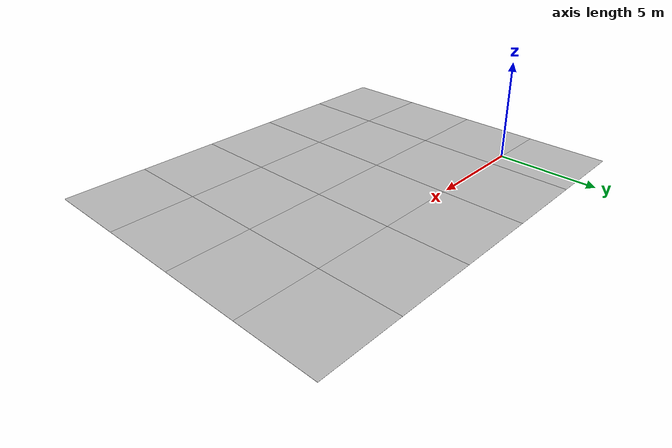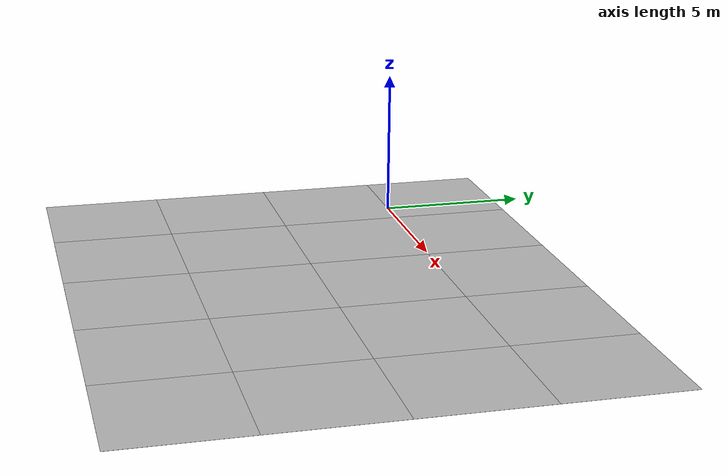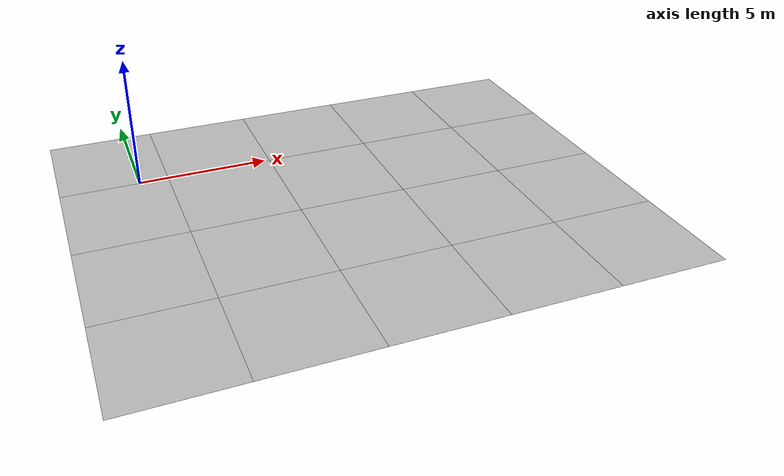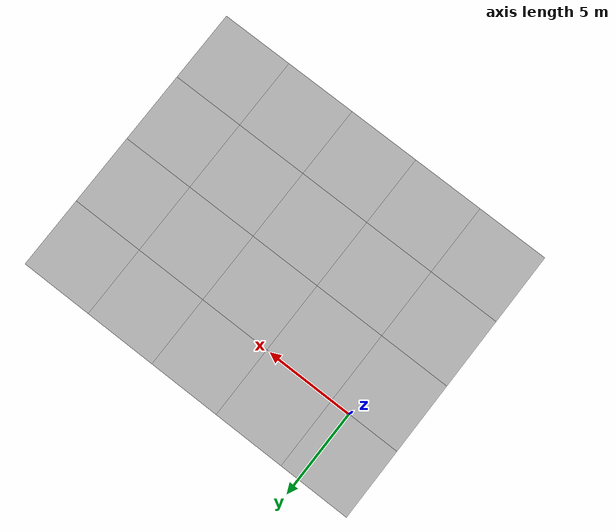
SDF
<sdf version='1.6'><world name='default'>
    <light name='sun_light' type='directional'>
      <pose frame=''>0 0 10 0 -0 0</pose>
      <diffuse>0.5 0.5 0.5 1</diffuse>
      <specular>0.1 0.1 0.1 1</specular>
      <direction>0.1 0.1 -0.9</direction>
      <attenuation>
        <range>20</range>
        <constant>0.5</constant>
        <linear>0.01</linear>
        <quadratic>0.001</quadratic>
      </attenuation>
      <cast_shadows>1</cast_shadows>
    </light>

    <model name='Tile/0-0'>
      <static>1</static>
      <link name='link'>
        <collision name='collision'>
          <geometry>
            <plane>
              <normal>0 0 1</normal>
              <size>4.096 4.096</size>
            </plane>
          </geometry>
          <surface>
            <friction>
              <ode>
                <mu>100</mu>
                <mu2>50</mu2>
              </ode>
              <torsional>
                <ode/>
              </torsional>
            </friction>
            <contact>
              <ode/>
            </contact>
            <bounce/>
          </surface>
          <max_contacts>10</max_contacts>
        </collision>
        <visual name='visual'>
          <cast_shadows>0</cast_shadows>
          <geometry>
            <plane>
              <normal>0 0 1</normal>
              <size>4.096 4.096</size>
            </plane>
          </geometry>
          <material>
            <script>
              <uri>file://materials/scripts</uri>
              <uri>file://materials/textures</uri>
              <name>Tile/5eab350b8220ac9944dbdfa4ac3288c7c17e24c3bf5df0dfcf6173d64dae00a1</name>
            </script>
          </material>
        </visual>
        <self_collide>0</self_collide>
        <enable_wind>0</enable_wind>
        <kinematic>0</kinematic>
      </link>
      <pose frame=''>-0.952 -10.25725088833618 0 0 -0 0</pose>
    </model>

    <model name='Tile/0-1'>
      <static>1</static>
      <link name='link'>
        <collision name='collision'>
          <geometry>
            <plane>
              <normal>0 0 1</normal>
              <size>4.096 4.096</size>
            </plane>
          </geometry>
          <surface>
            <friction>
              <ode>
                <mu>100</mu>
                <mu2>50</mu2>
              </ode>
              <torsional>
                <ode/>
              </torsional>
            </friction>
            <contact>
              <ode/>
            </contact>
            <bounce/>
          </surface>
          <max_contacts>10</max_contacts>
        </collision>
        <visual name='visual'>
          <cast_shadows>0</cast_shadows>
          <geometry>
            <plane>
              <normal>0 0 1</normal>
              <size>4.096 4.096</size>
            </plane>
          </geometry>
          <material>
            <script>
              <uri>file://materials/scripts</uri>
              <uri>file://materials/textures</uri>
              <name>Tile/5eab350b8220ac9944dbdfa4ac3288c7c17e24c3bf5df0dfcf6173d64dae00a1</name>
            </script>
          </material>
        </visual>
        <self_collide>0</self_collide>
        <enable_wind>0</enable_wind>
        <kinematic>0</kinematic>
      </link>
      <pose frame=''>-0.952 -6.1612508883361805 0 0 -0 0</pose>
    </model>

    <model name='Tile/0-2'>
      <static>1</static>
      <link name='link'>
        <collision name='collision'>
          <geometry>
            <plane>
              <normal>0 0 1</normal>
              <size>4.096 4.096</size>
            </plane>
          </geometry>
          <surface>
            <friction>
              <ode>
                <mu>100</mu>
                <mu2>50</mu2>
              </ode>
              <torsional>
                <ode/>
              </torsional>
            </friction>
            <contact>
              <ode/>
            </contact>
            <bounce/>
          </surface>
          <max_contacts>10</max_contacts>
        </collision>
        <visual name='visual'>
          <cast_shadows>0</cast_shadows>
          <geometry>
            <plane>
              <normal>0 0 1</normal>
              <size>4.096 4.096</size>
            </plane>
          </geometry>
          <material>
            <script>
              <uri>file://materials/scripts</uri>
              <uri>file://materials/textures</uri>
              <name>Tile/b21e87aca7347fb7e7ec1d495ac43d496f06ab00fcd06efa14550045c2843718</name>
            </script>
          </material>
        </visual>
        <self_collide>0</self_collide>
        <enable_wind>0</enable_wind>
        <kinematic>0</kinematic>
      </link>
      <pose frame=''>-0.952 -2.0652508883361804 0 0 -0 0</pose>
    </model>

    <model name='Tile/0-3'>
      <static>1</static>
      <link name='link'>
        <collision name='collision'>
          <geometry>
            <plane>
              <normal>0 0 1</normal>
              <size>4.096 4.096</size>
            </plane>
          </geometry>
          <surface>
            <friction>
              <ode>
                <mu>100</mu>
                <mu2>50</mu2>
              </ode>
              <torsional>
                <ode/>
              </torsional>
            </friction>
            <contact>
              <ode/>
            </contact>
            <bounce/>
          </surface>
          <max_contacts>10</max_contacts>
        </collision>
        <visual name='visual'>
          <cast_shadows>0</cast_shadows>
          <geometry>
            <plane>
              <normal>0 0 1</normal>
              <size>4.096 4.096</size>
            </plane>
          </geometry>
          <material>
            <script>
              <uri>file://materials/scripts</uri>
              <uri>file://materials/textures</uri>
              <name>Tile/1c508ab05ef441a0e77cc45752326c17f747d32e5b012471dfd4995f9e37cf38</name>
            </script>
          </material>
        </visual>
        <self_collide>0</self_collide>
        <enable_wind>0</enable_wind>
        <kinematic>0</kinematic>
      </link>
      <pose frame=''>-0.952 2.0307491116638197 0 0 -0 0</pose>
    </model>

    <model name='Tile/1-0'>
      <static>1</static>
      <link name='link'>
        <collision name='collision'>
          <geometry>
            <plane>
              <normal>0 0 1</normal>
              <size>4.096 4.096</size>
            </plane>
          </geometry>
          <surface>
            <friction>
              <ode>
                <mu>100</mu>
                <mu2>50</mu2>
              </ode>
              <torsional>
                <ode/>
              </torsional>
            </friction>
            <contact>
              <ode/>
            </contact>
            <bounce/>
          </surface>
          <max_contacts>10</max_contacts>
        </collision>
        <visual name='visual'>
          <cast_shadows>0</cast_shadows>
          <geometry>
            <plane>
              <normal>0 0 1</normal>
              <size>4.096 4.096</size>
            </plane>
          </geometry>
          <material>
            <script>
              <uri>file://materials/scripts</uri>
              <uri>file://materials/textures</uri>
              <name>Tile/3b41320b0590d78a80528c6be545f1096f0e3b8bda63ea7345900b16f733899f</name>
            </script>
          </material>
        </visual>
        <self_collide>0</self_collide>
        <enable_wind>0</enable_wind>
        <kinematic>0</kinematic>
      </link>
      <pose frame=''>3.144 -10.25725088833618 0 0 -0 0</pose>
    </model>

    <model name='Tile/1-1'>
      <static>1</static>
      <link name='link'>
        <collision name='collision'>
          <geometry>
            <plane>
              <normal>0 0 1</normal>
              <size>4.096 4.096</size>
            </plane>
          </geometry>
          <surface>
            <friction>
              <ode>
                <mu>100</mu>
                <mu2>50</mu2>
              </ode>
              <torsional>
                <ode/>
              </torsional>
            </friction>
            <contact>
              <ode/>
            </contact>
            <bounce/>
          </surface>
          <max_contacts>10</max_contacts>
        </collision>
        <visual name='visual'>
          <cast_shadows>0</cast_shadows>
          <geometry>
            <plane>
              <normal>0 0 1</normal>
              <size>4.096 4.096</size>
            </plane>
          </geometry>
          <material>
            <script>
              <uri>file://materials/scripts</uri>
              <uri>file://materials/textures</uri>
              <name>Tile/84bcf109f8b5498794bfc38aefce2795dda5130f91375f0ac91817d9c6a1268c</name>
            </script>
          </material>
        </visual>
        <self_collide>0</self_collide>
        <enable_wind>0</enable_wind>
        <kinematic>0</kinematic>
      </link>
      <pose frame=''>3.144 -6.1612508883361805 0 0 -0 0</pose>
    </model>

    <model name='Tile/1-2'>
      <static>1</static>
      <link name='link'>
        <collision name='collision'>
          <geometry>
            <plane>
              <normal>0 0 1</normal>
              <size>4.096 4.096</size>
            </plane>
          </geometry>
          <surface>
            <friction>
              <ode>
                <mu>100</mu>
                <mu2>50</mu2>
              </ode>
              <torsional>
                <ode/>
              </torsional>
            </friction>
            <contact>
              <ode/>
            </contact>
            <bounce/>
          </surface>
          <max_contacts>10</max_contacts>
        </collision>
        <visual name='visual'>
          <cast_shadows>0</cast_shadows>
          <geometry>
            <plane>
              <normal>0 0 1</normal>
              <size>4.096 4.096</size>
            </plane>
          </geometry>
          <material>
            <script>
              <uri>file://materials/scripts</uri>
              <uri>file://materials/textures</uri>
              <name>Tile/acab734eb09d6deda5e5dbb0445b09136212e9219d2d42240648765041fc193f</name>
            </script>
          </material>
        </visual>
        <self_collide>0</self_collide>
        <enable_wind>0</enable_wind>
        <kinematic>0</kinematic>
      </link>
      <pose frame=''>3.144 -2.0652508883361804 0 0 -0 0</pose>
    </model>

    <model name='Tile/1-3'>
      <static>1</static>
      <link name='link'>
        <collision name='collision'>
          <geometry>
            <plane>
              <normal>0 0 1</normal>
              <size>4.096 4.096</size>
            </plane>
          </geometry>
          <surface>
            <friction>
              <ode>
                <mu>100</mu>
                <mu2>50</mu2>
              </ode>
              <torsional>
                <ode/>
              </torsional>
            </friction>
            <contact>
              <ode/>
            </contact>
            <bounce/>
          </surface>
          <max_contacts>10</max_contacts>
        </collision>
        <visual name='visual'>
          <cast_shadows>0</cast_shadows>
          <geometry>
            <plane>
              <normal>0 0 1</normal>
              <size>4.096 4.096</size>
            </plane>
          </geometry>
          <material>
            <script>
              <uri>file://materials/scripts</uri>
              <uri>file://materials/textures</uri>
              <name>Tile/f02de3276d20531434c8da178353330a43a1fd8c9aa6b3cefcfa4a7d21da561c</name>
            </script>
          </material>
        </visual>
        <self_collide>0</self_collide>
        <enable_wind>0</enable_wind>
        <kinematic>0</kinematic>
      </link>
      <pose frame=''>3.144 2.0307491116638197 0 0 -0 0</pose>
    </model>

    <model name='Tile/2-0'>
      <static>1</static>
      <link name='link'>
        <collision name='collision'>
          <geometry>
            <plane>
              <normal>0 0 1</normal>
              <size>4.096 4.096</size>
            </plane>
          </geometry>
          <surface>
            <friction>
              <ode>
                <mu>100</mu>
                <mu2>50</mu2>
              </ode>
              <torsional>
                <ode/>
              </torsional>
            </friction>
            <contact>
              <ode/>
            </contact>
            <bounce/>
          </surface>
          <max_contacts>10</max_contacts>
        </collision>
        <visual name='visual'>
          <cast_shadows>0</cast_shadows>
          <geometry>
            <plane>
              <normal>0 0 1</normal>
              <size>4.096 4.096</size>
            </plane>
          </geometry>
          <material>
            <script>
              <uri>file://materials/scripts</uri>
              <uri>file://materials/textures</uri>
              <name>Tile/1f62d89e518a986ef662b867c514cb45311857e26fbfa6544dbdc6545461b409</name>
            </script>
          </material>
        </visual>
        <self_collide>0</self_collide>
        <enable_wind>0</enable_wind>
        <kinematic>0</kinematic>
      </link>
      <pose frame=''>7.24 -10.25725088833618 0 0 -0 0</pose>
    </model>

    <model name='Tile/2-1'>
      <static>1</static>
      <link name='link'>
        <collision name='collision'>
          <geometry>
            <plane>
              <normal>0 0 1</normal>
              <size>4.096 4.096</size>
            </plane>
          </geometry>
          <surface>
            <friction>
              <ode>
                <mu>100</mu>
                <mu2>50</mu2>
              </ode>
              <torsional>
                <ode/>
              </torsional>
            </friction>
            <contact>
              <ode/>
            </contact>
            <bounce/>
          </surface>
          <max_contacts>10</max_contacts>
        </collision>
        <visual name='visual'>
          <cast_shadows>0</cast_shadows>
          <geometry>
            <plane>
              <normal>0 0 1</normal>
              <size>4.096 4.096</size>
            </plane>
          </geometry>
          <material>
            <script>
              <uri>file://materials/scripts</uri>
              <uri>file://materials/textures</uri>
              <name>Tile/dc44d14d4ab3eb974245260f8a5be8fa6a1d9fbf7ce49933aa309dc120b0ca4d</name>
            </script>
          </material>
        </visual>
        <self_collide>0</self_collide>
        <enable_wind>0</enable_wind>
        <kinematic>0</kinematic>
      </link>
      <pose frame=''>7.24 -6.1612508883361805 0 0 -0 0</pose>
    </model>

    <model name='Tile/2-2'>
      <static>1</static>
      <link name='link'>
        <collision name='collision'>
          <geometry>
            <plane>
              <normal>0 0 1</normal>
              <size>4.096 4.096</size>
            </plane>
          </geometry>
          <surface>
            <friction>
              <ode>
                <mu>100</mu>
                <mu2>50</mu2>
              </ode>
              <torsional>
                <ode/>
              </torsional>
            </friction>
            <contact>
              <ode/>
            </contact>
            <bounce/>
          </surface>
          <max_contacts>10</max_contacts>
        </collision>
        <visual name='visual'>
          <cast_shadows>0</cast_shadows>
          <geometry>
            <plane>
              <normal>0 0 1</normal>
              <size>4.096 4.096</size>
            </plane>
          </geometry>
          <material>
            <script>
              <uri>file://materials/scripts</uri>
              <uri>file://materials/textures</uri>
              <name>Tile/5eab350b8220ac9944dbdfa4ac3288c7c17e24c3bf5df0dfcf6173d64dae00a1</name>
            </script>
          </material>
        </visual>
        <self_collide>0</self_collide>
        <enable_wind>0</enable_wind>
        <kinematic>0</kinematic>
      </link>
      <pose frame=''>7.24 -2.0652508883361804 0 0 -0 0</pose>
    </model>

    <model name='Tile/2-3'>
      <static>1</static>
      <link name='link'>
        <collision name='collision'>
          <geometry>
            <plane>
              <normal>0 0 1</normal>
              <size>4.096 4.096</size>
            </plane>
          </geometry>
          <surface>
            <friction>
              <ode>
                <mu>100</mu>
                <mu2>50</mu2>
              </ode>
              <torsional>
                <ode/>
              </torsional>
            </friction>
            <contact>
              <ode/>
            </contact>
            <bounce/>
          </surface>
          <max_contacts>10</max_contacts>
        </collision>
        <visual name='visual'>
          <cast_shadows>0</cast_shadows>
          <geometry>
            <plane>
              <normal>0 0 1</normal>
              <size>4.096 4.096</size>
            </plane>
          </geometry>
          <material>
            <script>
              <uri>file://materials/scripts</uri>
              <uri>file://materials/textures</uri>
              <name>Tile/5eab350b8220ac9944dbdfa4ac3288c7c17e24c3bf5df0dfcf6173d64dae00a1</name>
            </script>
          </material>
        </visual>
        <self_collide>0</self_collide>
        <enable_wind>0</enable_wind>
        <kinematic>0</kinematic>
      </link>
      <pose frame=''>7.24 2.0307491116638197 0 0 -0 0</pose>
    </model>

    <model name='Tile/3-0'>
      <static>1</static>
      <link name='link'>
        <collision name='collision'>
          <geometry>
            <plane>
              <normal>0 0 1</normal>
              <size>4.096 4.096</size>
            </plane>
          </geometry>
          <surface>
            <friction>
              <ode>
                <mu>100</mu>
                <mu2>50</mu2>
              </ode>
              <torsional>
                <ode/>
              </torsional>
            </friction>
            <contact>
              <ode/>
            </contact>
            <bounce/>
          </surface>
          <max_contacts>10</max_contacts>
        </collision>
        <visual name='visual'>
          <cast_shadows>0</cast_shadows>
          <geometry>
            <plane>
              <normal>0 0 1</normal>
              <size>4.096 4.096</size>
            </plane>
          </geometry>
          <material>
            <script>
              <uri>file://materials/scripts</uri>
              <uri>file://materials/textures</uri>
              <name>Tile/5eab350b8220ac9944dbdfa4ac3288c7c17e24c3bf5df0dfcf6173d64dae00a1</name>
            </script>
          </material>
        </visual>
        <self_collide>0</self_collide>
        <enable_wind>0</enable_wind>
        <kinematic>0</kinematic>
      </link>
      <pose frame=''>11.336 -10.25725088833618 0 0 -0 0</pose>
    </model>

    <model name='Tile/3-1'>
      <static>1</static>
      <link name='link'>
        <collision name='collision'>
          <geometry>
            <plane>
              <normal>0 0 1</normal>
              <size>4.096 4.096</size>
            </plane>
          </geometry>
          <surface>
            <friction>
              <ode>
                <mu>100</mu>
                <mu2>50</mu2>
              </ode>
              <torsional>
                <ode/>
              </torsional>
            </friction>
            <contact>
              <ode/>
            </contact>
            <bounce/>
          </surface>
          <max_contacts>10</max_contacts>
        </collision>
        <visual name='visual'>
          <cast_shadows>0</cast_shadows>
          <geometry>
            <plane>
              <normal>0 0 1</normal>
              <size>4.096 4.096</size>
            </plane>
          </geometry>
          <material>
            <script>
              <uri>file://materials/scripts</uri>
              <uri>file://materials/textures</uri>
              <name>Tile/0fcfcac1c4f1d201838ddeede61d812330188209d5a87c1d6f6290ffd0f7175e</name>
            </script>
          </material>
        </visual>
        <self_collide>0</self_collide>
        <enable_wind>0</enable_wind>
        <kinematic>0</kinematic>
      </link>
      <pose frame=''>11.336 -6.1612508883361805 0 0 -0 0</pose>
    </model>

    <model name='Tile/3-2'>
      <static>1</static>
      <link name='link'>
        <collision name='collision'>
          <geometry>
            <plane>
              <normal>0 0 1</normal>
              <size>4.096 4.096</size>
            </plane>
          </geometry>
          <surface>
            <friction>
              <ode>
                <mu>100</mu>
                <mu2>50</mu2>
              </ode>
              <torsional>
                <ode/>
              </torsional>
            </friction>
            <contact>
              <ode/>
            </contact>
            <bounce/>
          </surface>
          <max_contacts>10</max_contacts>
        </collision>
        <visual name='visual'>
          <cast_shadows>0</cast_shadows>
          <geometry>
            <plane>
              <normal>0 0 1</normal>
              <size>4.096 4.096</size>
            </plane>
          </geometry>
          <material>
            <script>
              <uri>file://materials/scripts</uri>
              <uri>file://materials/textures</uri>
              <name>Tile/1bd15f11696fb04317c05463995b18fabd61212f220eabf86f989c205c159bc1</name>
            </script>
          </material>
        </visual>
        <self_collide>0</self_collide>
        <enable_wind>0</enable_wind>
        <kinematic>0</kinematic>
      </link>
      <pose frame=''>11.336 -2.0652508883361804 0 0 -0 0</pose>
    </model>

    <model name='Tile/3-3'>
      <static>1</static>
      <link name='link'>
        <collision name='collision'>
          <geometry>
            <plane>
              <normal>0 0 1</normal>
              <size>4.096 4.096</size>
            </plane>
          </geometry>
          <surface>
            <friction>
              <ode>
                <mu>100</mu>
                <mu2>50</mu2>
              </ode>
              <torsional>
                <ode/>
              </torsional>
            </friction>
            <contact>
              <ode/>
            </contact>
            <bounce/>
          </surface>
          <max_contacts>10</max_contacts>
        </collision>
        <visual name='visual'>
          <cast_shadows>0</cast_shadows>
          <geometry>
            <plane>
              <normal>0 0 1</normal>
              <size>4.096 4.096</size>
            </plane>
          </geometry>
          <material>
            <script>
              <uri>file://materials/scripts</uri>
              <uri>file://materials/textures</uri>
              <name>Tile/5eab350b8220ac9944dbdfa4ac3288c7c17e24c3bf5df0dfcf6173d64dae00a1</name>
            </script>
          </material>
        </visual>
        <self_collide>0</self_collide>
        <enable_wind>0</enable_wind>
        <kinematic>0</kinematic>
      </link>
      <pose frame=''>11.336 2.0307491116638197 0 0 -0 0</pose>
    </model>

    <model name='Tile/4-0'>
      <static>1</static>
      <link name='link'>
        <collision name='collision'>
          <geometry>
            <plane>
              <normal>0 0 1</normal>
              <size>4.096 4.096</size>
            </plane>
          </geometry>
          <surface>
            <friction>
              <ode>
                <mu>100</mu>
                <mu2>50</mu2>
              </ode>
              <torsional>
                <ode/>
              </torsional>
            </friction>
            <contact>
              <ode/>
            </contact>
            <bounce/>
          </surface>
          <max_contacts>10</max_contacts>
        </collision>
        <visual name='visual'>
          <cast_shadows>0</cast_shadows>
          <geometry>
            <plane>
              <normal>0 0 1</normal>
              <size>4.096 4.096</size>
            </plane>
          </geometry>
          <material>
            <script>
              <uri>file://materials/scripts</uri>
              <uri>file://materials/textures</uri>
              <name>Tile/5eab350b8220ac9944dbdfa4ac3288c7c17e24c3bf5df0dfcf6173d64dae00a1</name>
            </script>
          </material>
        </visual>
        <self_collide>0</self_collide>
        <enable_wind>0</enable_wind>
        <kinematic>0</kinematic>
      </link>
      <pose frame=''>15.431999999999999 -10.25725088833618 0 0 -0 0</pose>
    </model>

    <model name='Tile/4-1'>
      <static>1</static>
      <link name='link'>
        <collision name='collision'>
          <geometry>
            <plane>
              <normal>0 0 1</normal>
              <size>4.096 4.096</size>
            </plane>
          </geometry>
          <surface>
            <friction>
              <ode>
                <mu>100</mu>
                <mu2>50</mu2>
              </ode>
              <torsional>
                <ode/>
              </torsional>
            </friction>
            <contact>
              <ode/>
            </contact>
            <bounce/>
          </surface>
          <max_contacts>10</max_contacts>
        </collision>
        <visual name='visual'>
          <cast_shadows>0</cast_shadows>
          <geometry>
            <plane>
              <normal>0 0 1</normal>
              <size>4.096 4.096</size>
            </plane>
          </geometry>
          <material>
            <script>
              <uri>file://materials/scripts</uri>
              <uri>file://materials/textures</uri>
              <name>Tile/38264f678927eb49a4919dc1611e6aeeec91eb39b56a9bc7fa4afb664f21d57e</name>
            </script>
          </material>
        </visual>
        <self_collide>0</self_collide>
        <enable_wind>0</enable_wind>
        <kinematic>0</kinematic>
      </link>
      <pose frame=''>15.431999999999999 -6.1612508883361805 0 0 -0 0</pose>
    </model>

    <model name='Tile/4-2'>
      <static>1</static>
      <link name='link'>
        <collision name='collision'>
          <geometry>
            <plane>
              <normal>0 0 1</normal>
              <size>4.096 4.096</size>
            </plane>
          </geometry>
          <surface>
            <friction>
              <ode>
                <mu>100</mu>
                <mu2>50</mu2>
              </ode>
              <torsional>
                <ode/>
              </torsional>
            </friction>
            <contact>
              <ode/>
            </contact>
            <bounce/>
          </surface>
          <max_contacts>10</max_contacts>
        </collision>
        <visual name='visual'>
          <cast_shadows>0</cast_shadows>
          <geometry>
            <plane>
              <normal>0 0 1</normal>
              <size>4.096 4.096</size>
            </plane>
          </geometry>
          <material>
            <script>
              <uri>file://materials/scripts</uri>
              <uri>file://materials/textures</uri>
              <name>Tile/27eba84b47eee5df29f7877ad0932f16fe930f75344d64c3a7a904e104e35dac</name>
            </script>
          </material>
        </visual>
        <self_collide>0</self_collide>
        <enable_wind>0</enable_wind>
        <kinematic>0</kinematic>
      </link>
      <pose frame=''>15.431999999999999 -2.0652508883361804 0 0 -0 0</pose>
    </model>

    <model name='Tile/4-3'>
      <static>1</static>
      <link name='link'>
        <collision name='collision'>
          <geometry>
            <plane>
              <normal>0 0 1</normal>
              <size>4.096 4.096</size>
            </plane>
          </geometry>
          <surface>
            <friction>
              <ode>
                <mu>100</mu>
                <mu2>50</mu2>
              </ode>
              <torsional>
                <ode/>
              </torsional>
            </friction>
            <contact>
              <ode/>
            </contact>
            <bounce/>
          </surface>
          <max_contacts>10</max_contacts>
        </collision>
        <visual name='visual'>
          <cast_shadows>0</cast_shadows>
          <geometry>
            <plane>
              <normal>0 0 1</normal>
              <size>4.096 4.096</size>
            </plane>
          </geometry>
          <material>
            <script>
              <uri>file://materials/scripts</uri>
              <uri>file://materials/textures</uri>
              <name>Tile/5eab350b8220ac9944dbdfa4ac3288c7c17e24c3bf5df0dfcf6173d64dae00a1</name>
            </script>
          </material>
        </visual>
        <self_collide>0</self_collide>
        <enable_wind>0</enable_wind>
        <kinematic>0</kinematic>
      </link>
      <pose frame=''>15.431999999999999 2.0307491116638197 0 0 -0 0</pose>
    </model>
    </world></sdf>
